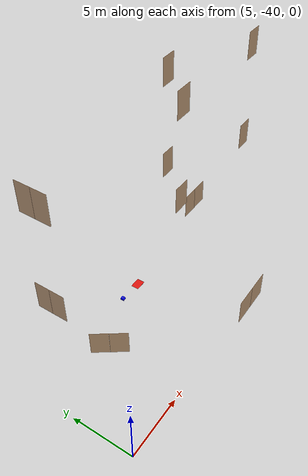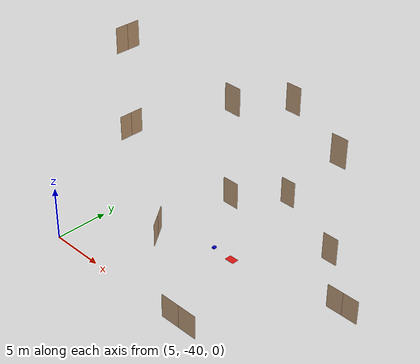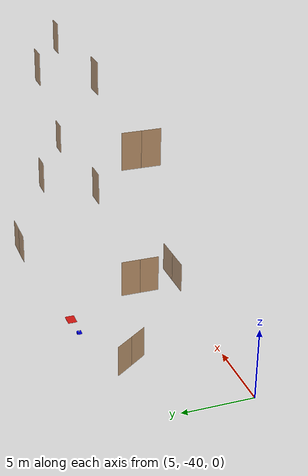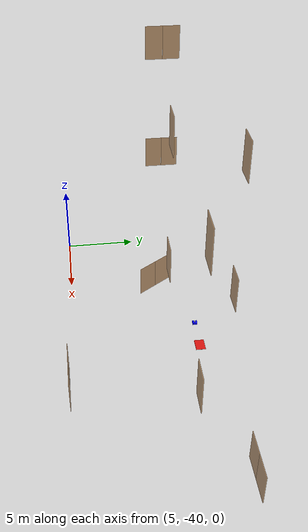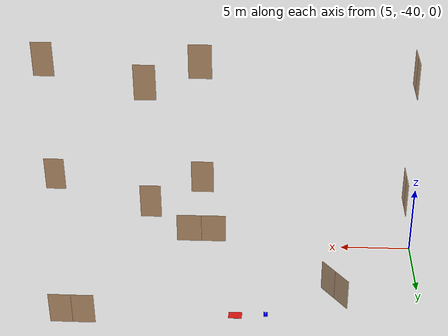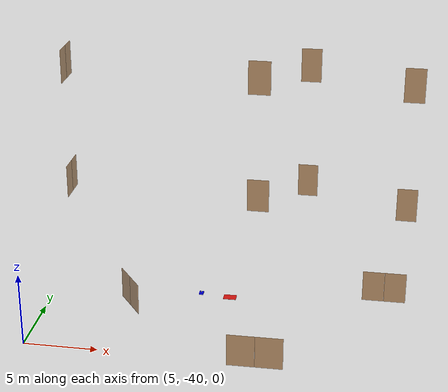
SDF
<sdf version="1.7">
 <world name="sim_world">
  <model name="robot_1">
   <pose>15.402 -31.594 0.1 0 0 0.0</pose>
   <canonical_link>base_link</canonical_link>
   <link name="base_footprint">
    <inertial><mass>0.1</mass><inertia><ixx>0.001</ixx><iyy>0.001</iyy><izz>0.001</izz></inertia></inertial>
   </link>
   <link name="base_link">
    <inertial><mass>1.37</mass><inertia><ixx>0.0087</ixx><iyy>0.0086</iyy><izz>0.0146</izz></inertia></inertial>
    <collision name="base_collision">
     <pose>-0.032 0 0.07 0 0 0</pose>
     <geometry><box><size>0.28 0.31 0.14</size></box></geometry>
    </collision>
    <visual name="base_visual">
     <pose>-0.032 0 0.07 0 0 0</pose>
     <geometry><box><size>0.28 0.31 0.14</size></box></geometry>
     <material><ambient>0.0 0.0 1.0 1</ambient><diffuse>0.0 0.0 1.0 1</diffuse></material>
    </visual>
   </link>
   <link name="wheel_left_link">
    <pose>0 0.144 0.023 -1.57 0 0</pose>
    <inertial><mass>0.028</mass><inertia><ixx>1.1e-5</ixx><iyy>1.1e-5</iyy><izz>2.1e-5</izz></inertia></inertial>
    <collision name="left_wheel_collision">
     <geometry><cylinder><radius>0.033</radius><length>0.018</length></cylinder></geometry>
     <surface>
      <friction>
       <ode><mu>1.0</mu><mu2>1.0</mu2></ode>
       <bullet><friction>1.0</friction><friction2>1.0</friction2></bullet>
      </friction>
     </surface>
    </collision>
    <visual name="left_wheel_visual">
     <geometry><cylinder><radius>0.033</radius><length>0.018</length></cylinder></geometry>
    </visual>
   </link>
   <link name="wheel_right_link">
    <pose>0 -0.144 0.023 -1.57 0 0</pose>
    <inertial><mass>0.028</mass><inertia><ixx>1.1e-5</ixx><iyy>1.1e-5</iyy><izz>2.1e-5</izz></inertia></inertial>
    <collision name="right_wheel_collision">
     <geometry><cylinder><radius>0.033</radius><length>0.018</length></cylinder></geometry>
     <surface>
      <friction>
       <ode><mu>1.0</mu><mu2>1.0</mu2></ode>
       <bullet><friction>1.0</friction><friction2>1.0</friction2></bullet>
      </friction>
     </surface>
    </collision>
    <visual name="right_wheel_visual">
     <geometry><cylinder><radius>0.033</radius><length>0.018</length></cylinder></geometry>
    </visual>
   </link>
   <link name="base_scan">
    <pose>-0.032 0 0.172 0 0 0</pose>
    <inertial><mass>0.114</mass><inertia><ixx>0.001</ixx><iyy>0.001</iyy><izz>0.001</izz></inertia></inertial>
    <collision name="lidar_collision">
     <geometry><cylinder><radius>0.0508</radius><length>0.055</length></cylinder></geometry>
    </collision>
    <visual name="lidar_visual">
     <geometry><cylinder><radius>0.0508</radius><length>0.055</length></cylinder></geometry>
    </visual>
    <sensor name="lidar" type="gpu_lidar">
     <pose>0 0 0.01 0 0 0</pose>
     <topic>scan</topic>
     <update_rate>10.0</update_rate>
     <lidar>
      <scan>
       <horizontal>
        <samples>360</samples>
        <resolution>1.0</resolution>
        <min_angle>0.0</min_angle>
        <max_angle>6.28</max_angle>
       </horizontal>
      </scan>
      <range><min>0.12</min><max>12.0</max><resolution>0.015</resolution></range>
     </lidar>
     <visualize>true</visualize>
     <frame_id>base_scan</frame_id>
     <gz_frame_id>lidar_frame</gz_frame_id>
    </sensor>
   </link>
   <link name="imu_link">
    <pose>0 0 0.068 0 0 0</pose>
    <inertial><mass>0.001</mass><inertia><ixx>0.0001</ixx><iyy>0.0001</iyy><izz>0.0001</izz></inertia></inertial>
    <sensor name="tb3_imu" type="imu">
     <always_on>true</always_on>
     <update_rate>200</update_rate>
     <imu>
      <angular_velocity>
       <x><noise type="gaussian"><mean>0</mean><stddev>0.009</stddev></noise></x>
       <y><noise type="gaussian"><mean>0</mean><stddev>0.009</stddev></noise></y>
       <z><noise type="gaussian"><mean>0</mean><stddev>0.009</stddev></noise></z>
      </angular_velocity>
      <linear_acceleration>
       <x><noise type="gaussian"><mean>0</mean><stddev>0.017</stddev></noise></x>
       <y><noise type="gaussian"><mean>0</mean><stddev>0.017</stddev></noise></y>
       <z><noise type="gaussian"><mean>0</mean><stddev>0.017</stddev></noise></z>
      </linear_acceleration>
     </imu>
    </sensor>
   </link>
   <joint name="base_joint" type="fixed"><parent>base_footprint</parent><child>base_link</child></joint>
   <joint name="left_wheel_joint" type="revolute">
    <parent>base_link</parent>
    <child>wheel_left_link</child>
    <axis>
     <xyz>0 0 1</xyz>
     <limit><lower>-1e16</lower><upper>1e16</upper><effort>1000</effort><velocity>1000</velocity></limit>
     <dynamics><friction>0.1</friction></dynamics>
    </axis>
   </joint>
   <joint name="right_wheel_joint" type="revolute">
    <parent>base_link</parent>
    <child>wheel_right_link</child>
    <axis>
     <xyz>0 0 1</xyz>
     <limit><lower>-1e16</lower><upper>1e16</upper><effort>1000</effort><velocity>1000</velocity></limit>
     <dynamics><friction>0.1</friction></dynamics>
    </axis>
   </joint>
   <joint name="lidar_joint" type="fixed"><parent>base_link</parent><child>base_scan</child></joint>
   <joint name="imu_joint" type="fixed"><parent>base_link</parent><child>imu_link</child></joint>
   <plugin filename="gz-sim-diff-drive-system" name="gz::sim::systems::DiffDrive">
    <left_joint>left_wheel_joint</left_joint>
    <right_joint>right_wheel_joint</right_joint>
    <wheel_separation>0.287</wheel_separation>
    <wheel_radius>0.033</wheel_radius>
    <odom_publish_frequency>200.0</odom_publish_frequency>
    <topic>/phase5/internal_drive</topic>
    <odom_topic>/robot_1/odom</odom_topic>
    <frame_id>odom</frame_id>
    <child_frame_id>base_footprint</child_frame_id>
    <tf_topic>/robot_1/tf</tf_topic>
   </plugin>
   <plugin filename="libphase5_drive_watchdog.so" name="phase5::DriveWatchdog">
    <output_topic>/phase5/internal_drive</output_topic>
    <prefix>/phase5/drive</prefix>
   </plugin>
   <link name="camera_link">
    <pose relative_to="base_link">0.11 0 0.15 0 0 0</pose>
    <inertial>
     <mass>0.01</mass>
     <inertia><ixx>0.00001</ixx><iyy>0.00001</iyy><izz>0.00001</izz><ixy>0</ixy><ixz>0</ixz><iyz>0</iyz></inertia>
    </inertial>
    <sensor name="rgbd_camera" type="rgbd_camera">
     <always_on>true</always_on>
     <update_rate>30</update_rate>
     <topic>/robot_1/camera</topic>
     <gz_frame_id>camera_color_optical_frame</gz_frame_id>
     <camera>
      <horizontal_fov>1.04719755</horizontal_fov>
      <image><width>640</width><height>480</height><format>R8G8B8</format></image>
      <clip><near>0.15</near><far>5.0</far></clip>
     </camera>
     <visualize>false</visualize>
    </sensor>
   </link>
   <joint name="camera_joint" type="fixed"><parent>base_link</parent><child>camera_link</child></joint>
   <link name="rear_left_caster">
    <pose>-0.14 0.064 -0.005 0 0 0</pose>
    <inertial><mass>0.001</mass><inertia><ixx>1e-8</ixx><iyy>1e-8</iyy><izz>1e-8</izz></inertia></inertial>
    <collision name="support">
     <geometry><sphere><radius>0.005</radius></sphere></geometry>
     <surface>
      <friction>
       <ode><mu>1</mu><mu2>1</mu2></ode>
       <bullet><friction>1</friction><friction2>1</friction2></bullet>
      </friction>
     </surface>
    </collision>
    <visual name="support"><geometry><sphere><radius>0.005</radius></sphere></geometry></visual>
   </link>
   <joint name="rear_left_caster_joint" type="ball">
    <parent>base_link</parent>
    <child>rear_left_caster</child>
   </joint>
   <link name="rear_right_caster">
    <pose>-0.14 -0.064 -0.005 0 0 0</pose>
    <inertial><mass>0.001</mass><inertia><ixx>1e-8</ixx><iyy>1e-8</iyy><izz>1e-8</izz></inertia></inertial>
    <collision name="support">
     <geometry><sphere><radius>0.005</radius></sphere></geometry>
     <surface>
      <friction>
       <ode><mu>1</mu><mu2>1</mu2></ode>
       <bullet><friction>1</friction><friction2>1</friction2></bullet>
      </friction>
     </surface>
    </collision>
    <visual name="support"><geometry><sphere><radius>0.005</radius></sphere></geometry></visual>
   </link>
   <joint name="rear_right_caster_joint" type="ball">
    <parent>base_link</parent>
    <child>rear_right_caster</child>
   </joint>
   <plugin filename="libphase5_contact_audit.so" name="phase5::ContactAudit">
    <expected_collision_count>6</expected_collision_count>
   </plugin>
  </model>
  <model name="L1_door1">
   <pose>10.753654762321071 -33.79999264551465 0.0 0 0 2.1904910296829736</pose>
   <link name="right">
    <pose>0.7204413525969184 0 1.11 0 0 0</pose>
    <visual name="right_visual">
     <geometry><box><size>1.4308827051938369 0.03 2.2</size></box></geometry>
     <material>
      <ambient>0.5 0.25 0 0.6</ambient>
      <diffuse>0.5 0.25 0 0.6</diffuse>
      <pbr><metal><metalness>0.0</metalness></metal></pbr>
     </material>
    </visual>
    <collision name="right_collision">
     <geometry><box><size>1.4308827051938369 0.03 2.2</size></box></geometry>
     <surface><contact><collide_bitmask>0x02</collide_bitmask></contact></surface>
    </collision>
    <inertial>
     <mass>50.0</mass>
     <inertia><ixx>20.17041666666667</ixx><iyy>28.69760548342847</iyy><izz>8.534688816761804</izz></inertia>
    </inertial>
   </link>
   <joint name="right_joint" type="revolute">
    <parent>world</parent>
    <child>right</child>
    <axis><xyz>0 0 1</xyz><limit><lower>0</lower><upper>1.57</upper></limit></axis>
    <pose>0.7204413525969184 0 0 0 0 0</pose>
   </joint>
   <link name="left">
    <pose>-0.7204413525969184 0 1.11 0 0 0</pose>
    <visual name="left_visual">
     <geometry><box><size>1.4308827051938369 0.03 2.2</size></box></geometry>
     <material>
      <ambient>0.5 0.25 0 0.6</ambient>
      <diffuse>0.5 0.25 0 0.6</diffuse>
      <pbr><metal><metalness>0.0</metalness></metal></pbr>
     </material>
    </visual>
    <collision name="left_collision">
     <geometry><box><size>1.4308827051938369 0.03 2.2</size></box></geometry>
     <surface><contact><collide_bitmask>0x02</collide_bitmask></contact></surface>
    </collision>
    <inertial>
     <mass>50.0</mass>
     <inertia><ixx>20.17041666666667</ixx><iyy>28.69760548342847</iyy><izz>8.534688816761804</izz></inertia>
    </inertial>
   </link>
   <joint name="left_joint" type="revolute">
    <parent>world</parent>
    <child>left</child>
    <axis><xyz>0 0 1</xyz><limit><lower>-1.57</lower><upper>0</upper></limit></axis>
    <pose>-0.7204413525969184 0 0 0 0 0</pose>
   </joint>
   <plugin name="register_component" filename="libregister_component.so">
    <component name="Door">
     <v_max_door>0.5</v_max_door>
     <a_max_door>0.3</a_max_door>
     <a_nom_door>0.15</a_nom_door>
     <dx_min_door>0.01</dx_min_door>
     <f_max_door>500.0</f_max_door>
     <ros_interface>true</ros_interface>
     <door name="L1_door1" type="DoubleSwingDoor" left_joint_name="left_joint" right_joint_name="right_joint"/>
    </component>
   </plugin>
  </model>
  <model name="L1_door3">
   <pose>20.334155710474544 -40.40725483879361 0.0 0 0 -3.137402798278724</pose>
   <link name="right">
    <pose>0.9069965354571369 0 1.11 0 0 0</pose>
    <visual name="right_visual">
     <geometry><box><size>1.8039930709142737 0.03 2.2</size></box></geometry>
     <material>
      <ambient>0.5 0.25 0 0.6</ambient>
      <diffuse>0.5 0.25 0 0.6</diffuse>
      <pbr><metal><metalness>0.0</metalness></metal></pbr>
     </material>
    </visual>
    <collision name="right_collision">
     <geometry><box><size>1.8039930709142737 0.03 2.2</size></box></geometry>
     <surface><contact><collide_bitmask>0x02</collide_bitmask></contact></surface>
    </collision>
    <inertial>
     <mass>50.0</mass>
     <inertia><ixx>20.17041666666667</ixx><iyy>33.726629166277974</iyy><izz>13.563712499611302</izz></inertia>
    </inertial>
   </link>
   <joint name="right_joint" type="prismatic">
    <parent>world</parent>
    <child>right</child>
    <axis>
     <xyz>1 0 0</xyz>
     <limit><lower>0.0</lower><upper>1.8139930709142738</upper><effort>500.0</effort></limit>
    </axis>
   </joint>
   <link name="left">
    <pose>-0.9069965354571369 0 1.11 0 0 0</pose>
    <visual name="left_visual">
     <geometry><box><size>1.8039930709142737 0.03 2.2</size></box></geometry>
     <material>
      <ambient>0.5 0.25 0 0.6</ambient>
      <diffuse>0.5 0.25 0 0.6</diffuse>
      <pbr><metal><metalness>0.0</metalness></metal></pbr>
     </material>
    </visual>
    <collision name="left_collision">
     <geometry><box><size>1.8039930709142737 0.03 2.2</size></box></geometry>
     <surface><contact><collide_bitmask>0x02</collide_bitmask></contact></surface>
    </collision>
    <inertial>
     <mass>50.0</mass>
     <inertia><ixx>20.17041666666667</ixx><iyy>33.726629166277974</iyy><izz>13.563712499611302</izz></inertia>
    </inertial>
   </link>
   <joint name="left_joint" type="prismatic">
    <parent>world</parent>
    <child>left</child>
    <axis>
     <xyz>1 0 0</xyz>
     <limit><lower>-1.8139930709142738</lower><upper>0.0</upper><effort>500.0</effort></limit>
    </axis>
   </joint>
   <plugin name="register_component" filename="libregister_component.so">
    <component name="Door">
     <v_max_door>0.2</v_max_door>
     <a_max_door>0.2</a_max_door>
     <a_nom_door>0.08</a_nom_door>
     <dx_min_door>0.001</dx_min_door>
     <f_max_door>100.0</f_max_door>
     <ros_interface>true</ros_interface>
     <door name="L1_door3" type="DoubleSlidingDoor" left_joint_name="left_joint" right_joint_name="right_joint"/>
    </component>
   </plugin>
  </model>
  <model name="L1_door5">
   <pose>28.079493196697264 -30.43738230505557 0.0 0 0 -0.0023958500301941633</pose>
   <link name="right">
    <pose>0.7494993011996198 0 1.11 0 0 0</pose>
    <visual name="right_visual">
     <geometry><box><size>1.4889986023992396 0.03 2.2</size></box></geometry>
     <material>
      <ambient>0.5 0.25 0 0.6</ambient>
      <diffuse>0.5 0.25 0 0.6</diffuse>
      <pbr><metal><metalness>0.0</metalness></metal></pbr>
     </material>
    </visual>
    <collision name="right_collision">
     <geometry><box><size>1.4889986023992396 0.03 2.2</size></box></geometry>
     <surface><contact><collide_bitmask>0x02</collide_bitmask></contact></surface>
    </collision>
    <inertial>
     <mass>50.0</mass>
     <inertia><ixx>20.17041666666667</ixx><iyy>29.404653491445373</iyy><izz>9.241736824778705</izz></inertia>
    </inertial>
   </link>
   <joint name="right_joint" type="prismatic">
    <parent>world</parent>
    <child>right</child>
    <axis>
     <xyz>1 0 0</xyz>
     <limit><lower>0.0</lower><upper>1.4989986023992397</upper><effort>500.0</effort></limit>
    </axis>
   </joint>
   <link name="left">
    <pose>-0.7494993011996198 0 1.11 0 0 0</pose>
    <visual name="left_visual">
     <geometry><box><size>1.4889986023992396 0.03 2.2</size></box></geometry>
     <material>
      <ambient>0.5 0.25 0 0.6</ambient>
      <diffuse>0.5 0.25 0 0.6</diffuse>
      <pbr><metal><metalness>0.0</metalness></metal></pbr>
     </material>
    </visual>
    <collision name="left_collision">
     <geometry><box><size>1.4889986023992396 0.03 2.2</size></box></geometry>
     <surface><contact><collide_bitmask>0x02</collide_bitmask></contact></surface>
    </collision>
    <inertial>
     <mass>50.0</mass>
     <inertia><ixx>20.17041666666667</ixx><iyy>29.404653491445373</iyy><izz>9.241736824778705</izz></inertia>
    </inertial>
   </link>
   <joint name="left_joint" type="prismatic">
    <parent>world</parent>
    <child>left</child>
    <axis>
     <xyz>1 0 0</xyz>
     <limit><lower>-1.4989986023992397</lower><upper>0.0</upper><effort>500.0</effort></limit>
    </axis>
   </joint>
   <plugin name="register_component" filename="libregister_component.so">
    <component name="Door">
     <v_max_door>0.2</v_max_door>
     <a_max_door>0.2</a_max_door>
     <a_nom_door>0.08</a_nom_door>
     <dx_min_door>0.001</dx_min_door>
     <f_max_door>100.0</f_max_door>
     <ros_interface>true</ros_interface>
     <door name="L1_door5" type="DoubleSlidingDoor" left_joint_name="left_joint" right_joint_name="right_joint"/>
    </component>
   </plugin>
  </model>
  <model name="L2_door2">
   <pose>6.76857286388343 -32.90682600516501 8.0 0 0 1.571612558028263</pose>
   <link name="right">
    <pose>0.5675078680191911 0 1.11 0 0 0</pose>
    <visual name="right_visual">
     <geometry><box><size>1.1250157360383821 0.03 2.2</size></box></geometry>
     <material>
      <ambient>0.5 0.25 0 0.6</ambient>
      <diffuse>0.5 0.25 0 0.6</diffuse>
      <pbr><metal><metalness>0.0</metalness></metal></pbr>
     </material>
    </visual>
    <collision name="right_collision">
     <geometry><box><size>1.1250157360383821 0.03 2.2</size></box></geometry>
     <surface><contact><collide_bitmask>0x02</collide_bitmask></contact></surface>
    </collision>
    <inertial>
     <mass>50.0</mass>
     <inertia><ixx>20.17041666666667</ixx><iyy>25.44025169305827</iyy><izz>5.277335026391595</izz></inertia>
    </inertial>
   </link>
   <joint name="right_joint" type="revolute">
    <parent>world</parent>
    <child>right</child>
    <axis><xyz>0 0 -1</xyz><limit><lower>0</lower><upper>1.57</upper></limit></axis>
    <pose>0.5675078680191911 0 0 0 0 0</pose>
   </joint>
   <link name="left">
    <pose>-0.5675078680191911 0 1.11 0 0 0</pose>
    <visual name="left_visual">
     <geometry><box><size>1.1250157360383821 0.03 2.2</size></box></geometry>
     <material>
      <ambient>0.5 0.25 0 0.6</ambient>
      <diffuse>0.5 0.25 0 0.6</diffuse>
      <pbr><metal><metalness>0.0</metalness></metal></pbr>
     </material>
    </visual>
    <collision name="left_collision">
     <geometry><box><size>1.1250157360383821 0.03 2.2</size></box></geometry>
     <surface><contact><collide_bitmask>0x02</collide_bitmask></contact></surface>
    </collision>
    <inertial>
     <mass>50.0</mass>
     <inertia><ixx>20.17041666666667</ixx><iyy>25.44025169305827</iyy><izz>5.277335026391595</izz></inertia>
    </inertial>
   </link>
   <joint name="left_joint" type="revolute">
    <parent>world</parent>
    <child>left</child>
    <axis><xyz>0 0 -1</xyz><limit><lower>-1.57</lower><upper>0</upper></limit></axis>
    <pose>-0.5675078680191911 0 0 0 0 0</pose>
   </joint>
   <plugin name="register_component" filename="libregister_component.so">
    <component name="Door">
     <v_max_door>0.5</v_max_door>
     <a_max_door>0.3</a_max_door>
     <a_nom_door>0.15</a_nom_door>
     <dx_min_door>0.01</dx_min_door>
     <f_max_door>500.0</f_max_door>
     <ros_interface>true</ros_interface>
     <door name="L2_door2" type="DoubleSwingDoor" left_joint_name="left_joint" right_joint_name="right_joint"/>
    </component>
   </plugin>
  </model>
  <model name="L2_door5">
   <pose>19.62055855578882 -34.21478433126707 8.0 0 0 3.1365461417546308</pose>
   <link name="right">
    <pose>0 0 1.11 0 0 0</pose>
    <visual name="right_visual">
     <geometry><box><size>1.4278667928054123 0.03 2.2</size></box></geometry>
     <material>
      <ambient>0.5 0.25 0 0.6</ambient>
      <diffuse>0.5 0.25 0 0.6</diffuse>
      <pbr><metal><metalness>0.0</metalness></metal></pbr>
     </material>
    </visual>
    <collision name="right_collision">
     <geometry><box><size>1.4278667928054123 0.03 2.2</size></box></geometry>
     <surface><contact><collide_bitmask>0x02</collide_bitmask></contact></surface>
    </collision>
    <inertial>
     <mass>50.0</mass>
     <inertia><ixx>20.17041666666667</ixx><iyy>28.661681574985064</iyy><izz>8.498764908318392</izz></inertia>
    </inertial>
   </link>
   <joint name="right_joint" type="revolute">
    <parent>world</parent>
    <child>right</child>
    <axis><xyz>0 0 -1</xyz><limit><lower>0</lower><upper>1.57</upper></limit></axis>
    <pose>0.7189333964027061 0 0 0 0 0</pose>
   </joint>
   <plugin name="register_component" filename="libregister_component.so">
    <component name="Door">
     <v_max_door>0.5</v_max_door>
     <a_max_door>0.3</a_max_door>
     <a_nom_door>0.15</a_nom_door>
     <dx_min_door>0.01</dx_min_door>
     <f_max_door>500.0</f_max_door>
     <ros_interface>true</ros_interface>
     <door name="L2_door5" type="SwingDoor" left_joint_name="empty_joint" right_joint_name="right_joint"/>
    </component>
   </plugin>
  </model>
  <model name="L2_door14">
   <pose>22.582882547846204 -31.092638612981972 8.0 0 0 3.137779488569298</pose>
   <link name="right">
    <pose>0 0 1.11 0 0 0</pose>
    <visual name="right_visual">
     <geometry><box><size>1.2889329745237348 0.03 2.2</size></box></geometry>
     <material>
      <ambient>0.5 0.25 0 0.6</ambient>
      <diffuse>0.5 0.25 0 0.6</diffuse>
      <pbr><metal><metalness>0.0</metalness></metal></pbr>
     </material>
    </visual>
    <collision name="right_collision">
     <geometry><box><size>1.2889329745237348 0.03 2.2</size></box></geometry>
     <surface><contact><collide_bitmask>0x02</collide_bitmask></contact></surface>
    </collision>
    <inertial>
     <mass>50.0</mass>
     <inertia><ixx>20.17041666666667</ixx><iyy>27.088950886727517</iyy><izz>6.926034220060845</izz></inertia>
    </inertial>
   </link>
   <joint name="right_joint" type="revolute">
    <parent>world</parent>
    <child>right</child>
    <axis><xyz>0 0 1</xyz><limit><lower>0</lower><upper>1.57</upper></limit></axis>
    <pose>0.6494664872618674 0 0 0 0 0</pose>
   </joint>
   <plugin name="register_component" filename="libregister_component.so">
    <component name="Door">
     <v_max_door>0.5</v_max_door>
     <a_max_door>0.3</a_max_door>
     <a_nom_door>0.15</a_nom_door>
     <dx_min_door>0.01</dx_min_door>
     <f_max_door>500.0</f_max_door>
     <ros_interface>true</ros_interface>
     <door name="L2_door14" type="SwingDoor" left_joint_name="empty_joint" right_joint_name="right_joint"/>
    </component>
   </plugin>
  </model>
  <model name="L2_door15">
   <pose>29.19689685453295 -34.1844883615378 8.0 0 0 3.1287318603676484</pose>
   <link name="right">
    <pose>0 0 1.11 0 0 0</pose>
    <visual name="right_visual">
     <geometry><box><size>1.2884785147293154 0.03 2.2</size></box></geometry>
     <material>
      <ambient>0.5 0.25 0 0.6</ambient>
      <diffuse>0.5 0.25 0 0.6</diffuse>
      <pbr><metal><metalness>0.0</metalness></metal></pbr>
     </material>
    </visual>
    <collision name="right_collision">
     <geometry><box><size>1.2884785147293154 0.03 2.2</size></box></geometry>
     <surface><contact><collide_bitmask>0x02</collide_bitmask></contact></surface>
    </collision>
    <inertial>
     <mass>50.0</mass>
     <inertia><ixx>20.17041666666667</ixx><iyy>27.0840703454961</iyy><izz>6.921153678829428</izz></inertia>
    </inertial>
   </link>
   <joint name="right_joint" type="revolute">
    <parent>world</parent>
    <child>right</child>
    <axis><xyz>0 0 -1</xyz><limit><lower>0</lower><upper>1.57</upper></limit></axis>
    <pose>0.6492392573646577 0 0 0 0 0</pose>
   </joint>
   <plugin name="register_component" filename="libregister_component.so">
    <component name="Door">
     <v_max_door>0.5</v_max_door>
     <a_max_door>0.3</a_max_door>
     <a_nom_door>0.15</a_nom_door>
     <dx_min_door>0.01</dx_min_door>
     <f_max_door>500.0</f_max_door>
     <ros_interface>true</ros_interface>
     <door name="L2_door15" type="SwingDoor" left_joint_name="empty_joint" right_joint_name="right_joint"/>
    </component>
   </plugin>
  </model>
  <model name="L3_door2">
   <pose>6.76857286388343 -32.90682600516501 16.0 0 0 1.571612558028263</pose>
   <link name="right">
    <pose>0.5675078680191911 0 1.11 0 0 0</pose>
    <visual name="right_visual">
     <geometry><box><size>1.1250157360383821 0.03 2.2</size></box></geometry>
     <material>
      <ambient>0.5 0.25 0 0.6</ambient>
      <diffuse>0.5 0.25 0 0.6</diffuse>
      <pbr><metal><metalness>0.0</metalness></metal></pbr>
     </material>
    </visual>
    <collision name="right_collision">
     <geometry><box><size>1.1250157360383821 0.03 2.2</size></box></geometry>
     <surface><contact><collide_bitmask>0x02</collide_bitmask></contact></surface>
    </collision>
    <inertial>
     <mass>50.0</mass>
     <inertia><ixx>20.17041666666667</ixx><iyy>25.44025169305827</iyy><izz>5.277335026391595</izz></inertia>
    </inertial>
   </link>
   <joint name="right_joint" type="revolute">
    <parent>world</parent>
    <child>right</child>
    <axis><xyz>0 0 -1</xyz><limit><lower>0</lower><upper>1.57</upper></limit></axis>
    <pose>0.5675078680191911 0 0 0 0 0</pose>
   </joint>
   <link name="left">
    <pose>-0.5675078680191911 0 1.11 0 0 0</pose>
    <visual name="left_visual">
     <geometry><box><size>1.1250157360383821 0.03 2.2</size></box></geometry>
     <material>
      <ambient>0.5 0.25 0 0.6</ambient>
      <diffuse>0.5 0.25 0 0.6</diffuse>
      <pbr><metal><metalness>0.0</metalness></metal></pbr>
     </material>
    </visual>
    <collision name="left_collision">
     <geometry><box><size>1.1250157360383821 0.03 2.2</size></box></geometry>
     <surface><contact><collide_bitmask>0x02</collide_bitmask></contact></surface>
    </collision>
    <inertial>
     <mass>50.0</mass>
     <inertia><ixx>20.17041666666667</ixx><iyy>25.44025169305827</iyy><izz>5.277335026391595</izz></inertia>
    </inertial>
   </link>
   <joint name="left_joint" type="revolute">
    <parent>world</parent>
    <child>left</child>
    <axis><xyz>0 0 -1</xyz><limit><lower>-1.57</lower><upper>0</upper></limit></axis>
    <pose>-0.5675078680191911 0 0 0 0 0</pose>
   </joint>
   <plugin name="register_component" filename="libregister_component.so">
    <component name="Door">
     <v_max_door>0.5</v_max_door>
     <a_max_door>0.3</a_max_door>
     <a_nom_door>0.15</a_nom_door>
     <dx_min_door>0.01</dx_min_door>
     <f_max_door>500.0</f_max_door>
     <ros_interface>true</ros_interface>
     <door name="L3_door2" type="DoubleSwingDoor" left_joint_name="left_joint" right_joint_name="right_joint"/>
    </component>
   </plugin>
  </model>
  <model name="L3_door5">
   <pose>19.62055855578882 -34.21478433126707 16.0 0 0 3.1365461417546308</pose>
   <link name="right">
    <pose>0 0 1.11 0 0 0</pose>
    <visual name="right_visual">
     <geometry><box><size>1.4278667928054123 0.03 2.2</size></box></geometry>
     <material>
      <ambient>0.5 0.25 0 0.6</ambient>
      <diffuse>0.5 0.25 0 0.6</diffuse>
      <pbr><metal><metalness>0.0</metalness></metal></pbr>
     </material>
    </visual>
    <collision name="right_collision">
     <geometry><box><size>1.4278667928054123 0.03 2.2</size></box></geometry>
     <surface><contact><collide_bitmask>0x02</collide_bitmask></contact></surface>
    </collision>
    <inertial>
     <mass>50.0</mass>
     <inertia><ixx>20.17041666666667</ixx><iyy>28.661681574985064</iyy><izz>8.498764908318392</izz></inertia>
    </inertial>
   </link>
   <joint name="right_joint" type="revolute">
    <parent>world</parent>
    <child>right</child>
    <axis><xyz>0 0 -1</xyz><limit><lower>0</lower><upper>1.57</upper></limit></axis>
    <pose>0.7189333964027061 0 0 0 0 0</pose>
   </joint>
   <plugin name="register_component" filename="libregister_component.so">
    <component name="Door">
     <v_max_door>0.5</v_max_door>
     <a_max_door>0.3</a_max_door>
     <a_nom_door>0.15</a_nom_door>
     <dx_min_door>0.01</dx_min_door>
     <f_max_door>500.0</f_max_door>
     <ros_interface>true</ros_interface>
     <door name="L3_door5" type="SwingDoor" left_joint_name="empty_joint" right_joint_name="right_joint"/>
    </component>
   </plugin>
  </model>
  <model name="L3_door14">
   <pose>22.582882547846204 -31.092638612981972 16.0 0 0 3.137779488569298</pose>
   <link name="right">
    <pose>0 0 1.11 0 0 0</pose>
    <visual name="right_visual">
     <geometry><box><size>1.2889329745237348 0.03 2.2</size></box></geometry>
     <material>
      <ambient>0.5 0.25 0 0.6</ambient>
      <diffuse>0.5 0.25 0 0.6</diffuse>
      <pbr><metal><metalness>0.0</metalness></metal></pbr>
     </material>
    </visual>
    <collision name="right_collision">
     <geometry><box><size>1.2889329745237348 0.03 2.2</size></box></geometry>
     <surface><contact><collide_bitmask>0x02</collide_bitmask></contact></surface>
    </collision>
    <inertial>
     <mass>50.0</mass>
     <inertia><ixx>20.17041666666667</ixx><iyy>27.088950886727517</iyy><izz>6.926034220060845</izz></inertia>
    </inertial>
   </link>
   <joint name="right_joint" type="revolute">
    <parent>world</parent>
    <child>right</child>
    <axis><xyz>0 0 1</xyz><limit><lower>0</lower><upper>1.57</upper></limit></axis>
    <pose>0.6494664872618674 0 0 0 0 0</pose>
   </joint>
   <plugin name="register_component" filename="libregister_component.so">
    <component name="Door">
     <v_max_door>0.5</v_max_door>
     <a_max_door>0.3</a_max_door>
     <a_nom_door>0.15</a_nom_door>
     <dx_min_door>0.01</dx_min_door>
     <f_max_door>500.0</f_max_door>
     <ros_interface>true</ros_interface>
     <door name="L3_door14" type="SwingDoor" left_joint_name="empty_joint" right_joint_name="right_joint"/>
    </component>
   </plugin>
  </model>
  <model name="L3_door15">
   <pose>29.19689685453295 -34.1844883615378 16.0 0 0 3.1287318603676484</pose>
   <link name="right">
    <pose>0 0 1.11 0 0 0</pose>
    <visual name="right_visual">
     <geometry><box><size>1.2884785147293154 0.03 2.2</size></box></geometry>
     <material>
      <ambient>0.5 0.25 0 0.6</ambient>
      <diffuse>0.5 0.25 0 0.6</diffuse>
      <pbr><metal><metalness>0.0</metalness></metal></pbr>
     </material>
    </visual>
    <collision name="right_collision">
     <geometry><box><size>1.2884785147293154 0.03 2.2</size></box></geometry>
     <surface><contact><collide_bitmask>0x02</collide_bitmask></contact></surface>
    </collision>
    <inertial>
     <mass>50.0</mass>
     <inertia><ixx>20.17041666666667</ixx><iyy>27.0840703454961</iyy><izz>6.921153678829428</izz></inertia>
    </inertial>
   </link>
   <joint name="right_joint" type="revolute">
    <parent>world</parent>
    <child>right</child>
    <axis><xyz>0 0 -1</xyz><limit><lower>0</lower><upper>1.57</upper></limit></axis>
    <pose>0.6492392573646577 0 0 0 0 0</pose>
   </joint>
   <plugin name="register_component" filename="libregister_component.so">
    <component name="Door">
     <v_max_door>0.5</v_max_door>
     <a_max_door>0.3</a_max_door>
     <a_nom_door>0.15</a_nom_door>
     <dx_min_door>0.01</dx_min_door>
     <f_max_door>500.0</f_max_door>
     <ros_interface>true</ros_interface>
     <door name="L3_door15" type="SwingDoor" left_joint_name="empty_joint" right_joint_name="right_joint"/>
    </component>
   </plugin>
  </model>
  <model name="semantic_target_mat">
   <static>true</static>
   <pose>17.4014 -31.594 0.005 0 0 0</pose>
   <link name="surface">
    <visual name="visual">
     <geometry><box><size>0.9 0.65 0.012</size></box></geometry>
     <material><ambient>0.85 0.08 0.06 1</ambient><diffuse>0.85 0.08 0.06 1</diffuse></material>
    </visual>
   </link>
  </model>
  <model name="phase5_warmup_camera_0">
   <static>true</static>
   <pose>19.402 -31.594 0.15 0 0 0.0</pose>
   <link name="link">
    <sensor name="rgbd_camera" type="rgbd_camera">
     <always_on>true</always_on>
     <update_rate>5</update_rate>
     <topic>/phase5/warmup/0</topic>
     <gz_frame_id>phase5_warmup_0_optical</gz_frame_id>
     <camera>
      <horizontal_fov>1.8</horizontal_fov>
      <image><width>640</width><height>480</height><format>R8G8B8</format></image>
      <clip><near>0.15</near><far>5.0</far></clip>
     </camera>
     <visualize>false</visualize>
    </sensor>
   </link>
  </model>
  <model name="phase5_warmup_camera_1">
   <static>true</static>
   <pose>19.402 -31.594 0.15 0 0 1.5707963267948966</pose>
   <link name="link">
    <sensor name="rgbd_camera" type="rgbd_camera">
     <always_on>true</always_on>
     <update_rate>5</update_rate>
     <topic>/phase5/warmup/1</topic>
     <gz_frame_id>phase5_warmup_1_optical</gz_frame_id>
     <camera>
      <horizontal_fov>1.8</horizontal_fov>
      <image><width>640</width><height>480</height><format>R8G8B8</format></image>
      <clip><near>0.15</near><far>5.0</far></clip>
     </camera>
     <visualize>false</visualize>
    </sensor>
   </link>
  </model>
  <model name="phase5_warmup_camera_2">
   <static>true</static>
   <pose>19.402 -31.594 0.15 0 0 3.141592653589793</pose>
   <link name="link">
    <sensor name="rgbd_camera" type="rgbd_camera">
     <always_on>true</always_on>
     <update_rate>5</update_rate>
     <topic>/phase5/warmup/2</topic>
     <gz_frame_id>phase5_warmup_2_optical</gz_frame_id>
     <camera>
      <horizontal_fov>1.8</horizontal_fov>
      <image><width>640</width><height>480</height><format>R8G8B8</format></image>
      <clip><near>0.15</near><far>5.0</far></clip>
     </camera>
     <visualize>false</visualize>
    </sensor>
   </link>
  </model>
  <model name="phase5_warmup_camera_3">
   <static>true</static>
   <pose>19.402 -31.594 0.15 0 0 4.71238898038469</pose>
   <link name="link">
    <sensor name="rgbd_camera" type="rgbd_camera">
     <always_on>true</always_on>
     <update_rate>5</update_rate>
     <topic>/phase5/warmup/3</topic>
     <gz_frame_id>phase5_warmup_3_optical</gz_frame_id>
     <camera>
      <horizontal_fov>1.8</horizontal_fov>
      <image><width>640</width><height>480</height><format>R8G8B8</format></image>
      <clip><near>0.15</near><far>5.0</far></clip>
     </camera>
     <visualize>false</visualize>
    </sensor>
   </link>
  </model>
  <model name="phase5_warmup_camera_4">
   <static>true</static>
   <pose>20.603043392264674 -31.096511537925384 0.15 0 0 0.39269908169872414</pose>
   <link name="link">
    <sensor name="rgbd_camera" type="rgbd_camera">
     <always_on>true</always_on>
     <update_rate>5</update_rate>
     <topic>/phase5/warmup/4</topic>
     <gz_frame_id>phase5_warmup_4_optical</gz_frame_id>
     <camera>
      <horizontal_fov>1.8</horizontal_fov>
      <image><width>640</width><height>480</height><format>R8G8B8</format></image>
      <clip><near>0.15</near><far>5.0</far></clip>
     </camera>
     <visualize>false</visualize>
    </sensor>
   </link>
  </model>
  <model name="phase5_warmup_camera_5">
   <static>true</static>
   <pose>19.89948846207462 -30.39295660773533 0.15 0 0 1.1780972450961724</pose>
   <link name="link">
    <sensor name="rgbd_camera" type="rgbd_camera">
     <always_on>true</always_on>
     <update_rate>5</update_rate>
     <topic>/phase5/warmup/5</topic>
     <gz_frame_id>phase5_warmup_5_optical</gz_frame_id>
     <camera>
      <horizontal_fov>1.8</horizontal_fov>
      <image><width>640</width><height>480</height><format>R8G8B8</format></image>
      <clip><near>0.15</near><far>5.0</far></clip>
     </camera>
     <visualize>false</visualize>
    </sensor>
   </link>
  </model>
  <model name="phase5_warmup_camera_7">
   <static>true</static>
   <pose>18.20095660773533 -31.096511537925384 0.15 0 0 2.748893571891069</pose>
   <link name="link">
    <sensor name="rgbd_camera" type="rgbd_camera">
     <always_on>true</always_on>
     <update_rate>5</update_rate>
     <topic>/phase5/warmup/7</topic>
     <gz_frame_id>phase5_warmup_7_optical</gz_frame_id>
     <camera>
      <horizontal_fov>1.8</horizontal_fov>
      <image><width>640</width><height>480</height><format>R8G8B8</format></image>
      <clip><near>0.15</near><far>5.0</far></clip>
     </camera>
     <visualize>false</visualize>
    </sensor>
   </link>
  </model>
  <model name="phase5_warmup_camera_8">
   <static>true</static>
   <pose>18.20095660773533 -32.091488462074615 0.15 0 0 3.5342917352885173</pose>
   <link name="link">
    <sensor name="rgbd_camera" type="rgbd_camera">
     <always_on>true</always_on>
     <update_rate>5</update_rate>
     <topic>/phase5/warmup/8</topic>
     <gz_frame_id>phase5_warmup_8_optical</gz_frame_id>
     <camera>
      <horizontal_fov>1.8</horizontal_fov>
      <image><width>640</width><height>480</height><format>R8G8B8</format></image>
      <clip><near>0.15</near><far>5.0</far></clip>
     </camera>
     <visualize>false</visualize>
    </sensor>
   </link>
  </model>
  <model name="phase5_warmup_camera_9">
   <static>true</static>
   <pose>18.904511537925384 -32.795043392264674 0.15 0 0 4.319689898685965</pose>
   <link name="link">
    <sensor name="rgbd_camera" type="rgbd_camera">
     <always_on>true</always_on>
     <update_rate>5</update_rate>
     <topic>/phase5/warmup/9</topic>
     <gz_frame_id>phase5_warmup_9_optical</gz_frame_id>
     <camera>
      <horizontal_fov>1.8</horizontal_fov>
      <image><width>640</width><height>480</height><format>R8G8B8</format></image>
      <clip><near>0.15</near><far>5.0</far></clip>
     </camera>
     <visualize>false</visualize>
    </sensor>
   </link>
  </model>
  <model name="phase5_warmup_camera_10">
   <static>true</static>
   <pose>19.89948846207462 -32.795043392264674 0.15 0 0 5.105088062083414</pose>
   <link name="link">
    <sensor name="rgbd_camera" type="rgbd_camera">
     <always_on>true</always_on>
     <update_rate>5</update_rate>
     <topic>/phase5/warmup/10</topic>
     <gz_frame_id>phase5_warmup_10_optical</gz_frame_id>
     <camera>
      <horizontal_fov>1.8</horizontal_fov>
      <image><width>640</width><height>480</height><format>R8G8B8</format></image>
      <clip><near>0.15</near><far>5.0</far></clip>
     </camera>
     <visualize>false</visualize>
    </sensor>
   </link>
  </model>
  <model name="phase5_warmup_camera_11">
   <static>true</static>
   <pose>20.603043392264674 -32.09148846207462 0.15 0 0 5.890486225480862</pose>
   <link name="link">
    <sensor name="rgbd_camera" type="rgbd_camera">
     <always_on>true</always_on>
     <update_rate>5</update_rate>
     <topic>/phase5/warmup/11</topic>
     <gz_frame_id>phase5_warmup_11_optical</gz_frame_id>
     <camera>
      <horizontal_fov>1.8</horizontal_fov>
      <image><width>640</width><height>480</height><format>R8G8B8</format></image>
      <clip><near>0.15</near><far>5.0</far></clip>
     </camera>
     <visualize>false</visualize>
    </sensor>
   </link>
  </model>
 </world>
</sdf>
